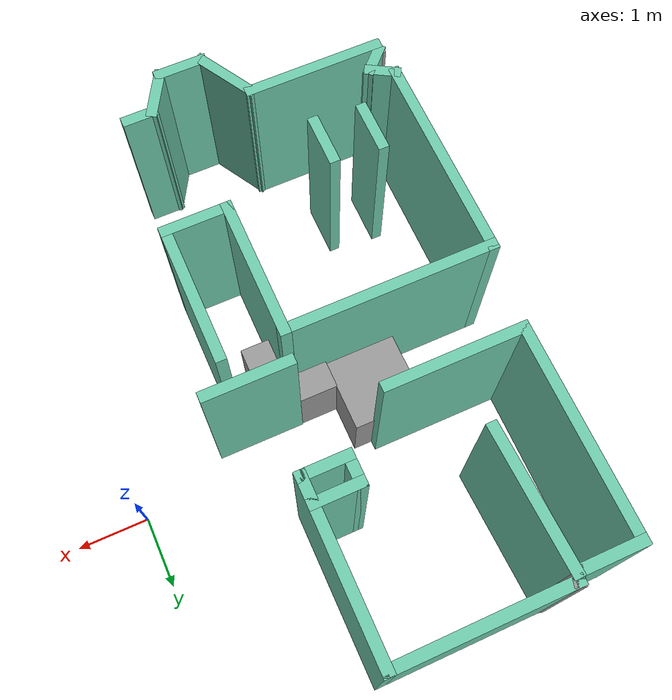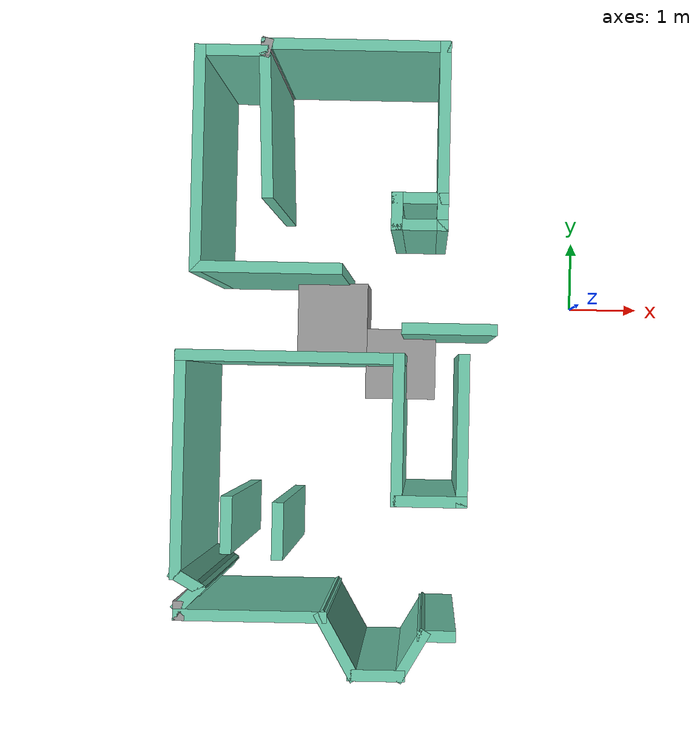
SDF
<sdf version="1.6">
 <model name="map_28">
  <link name="Wall_10">
   <pose>-3.17521 3.23882 0 0 -0 3.14159</pose>
   <visual name="Wall_10_Visual">
    <pose>0 0 1.25 0 -0 0</pose>
    <geometry><box><size>2.5 0.15 2.5</size></box></geometry>
    <material>
     <script><uri>file://media/materials/scripts/gazebo.material</uri><name>Gazebo/Grey</name></script>
     <ambient>0.435294 0.796078 0.67451 1</ambient>
     <shader type="pixel"/>
    </material>
    <meta><layer>0</layer></meta>
   </visual>
   <collision name="Wall_10_Collision">
    <pose>0 0 1.25 0 -0 0</pose>
    <geometry><box><size>2.5 0.15 2.5</size></box></geometry>
    <surface>
     <friction>
      <ode><mu>1</mu><mu2>1</mu2><fdir1>0 0 0</fdir1><slip1>0</slip1><slip2>0</slip2></ode>
      <torsional>
       <coefficient>1</coefficient>
       <patch_radius>0</patch_radius>
       <surface_radius>0</surface_radius>
       <use_patch_radius>1</use_patch_radius>
       <ode><slip>0</slip></ode>
      </torsional>
     </friction>
     <bounce><restitution_coefficient>0</restitution_coefficient><threshold>1e+06</threshold></bounce>
     <contact>
      <collide_without_contact>0</collide_without_contact>
      <collide_without_contact_bitmask>1</collide_without_contact_bitmask>
      <collide_bitmask>1</collide_bitmask>
      <ode>
       <soft_cfm>0</soft_cfm>
       <soft_erp>0.2</soft_erp>
       <kp>1e+13</kp>
       <kd>1</kd>
       <max_vel>0.01</max_vel>
       <min_depth>0</min_depth>
      </ode>
      <bullet>
       <split_impulse>1</split_impulse>
       <split_impulse_penetration_threshold>-0.01</split_impulse_penetration_threshold>
       <soft_cfm>0</soft_cfm>
       <soft_erp>0.2</soft_erp>
       <kp>1e+13</kp>
       <kd>1</kd>
      </bullet>
     </contact>
    </surface>
   </collision>
  </link>
  <link name="Wall_11">
   <pose>-4.3502 3.23882 0 0 -0 0</pose>
   <visual name="Wall_11_Visual">
    <pose>0 0 1.25 0 -0 0</pose>
    <geometry><box><size>0.15 0.15 2.5</size></box></geometry>
    <material>
     <script><uri>file://media/materials/scripts/gazebo.material</uri><name>Gazebo/Grey</name></script>
     <ambient>0.435294 0.796078 0.67451 1</ambient>
     <shader type="pixel"/>
    </material>
    <meta><layer>0</layer></meta>
   </visual>
   <collision name="Wall_11_Collision">
    <pose>0 0 1.25 0 -0 0</pose>
    <geometry><box><size>0.15 0.15 2.5</size></box></geometry>
    <surface>
     <friction>
      <ode><mu>1</mu><mu2>1</mu2><fdir1>0 0 0</fdir1><slip1>0</slip1><slip2>0</slip2></ode>
      <torsional>
       <coefficient>1</coefficient>
       <patch_radius>0</patch_radius>
       <surface_radius>0</surface_radius>
       <use_patch_radius>1</use_patch_radius>
       <ode><slip>0</slip></ode>
      </torsional>
     </friction>
     <bounce><restitution_coefficient>0</restitution_coefficient><threshold>1e+06</threshold></bounce>
     <contact>
      <collide_without_contact>0</collide_without_contact>
      <collide_without_contact_bitmask>1</collide_without_contact_bitmask>
      <collide_bitmask>1</collide_bitmask>
      <ode>
       <soft_cfm>0</soft_cfm>
       <soft_erp>0.2</soft_erp>
       <kp>1e+13</kp>
       <kd>1</kd>
       <max_vel>0.01</max_vel>
       <min_depth>0</min_depth>
      </ode>
      <bullet>
       <split_impulse>1</split_impulse>
       <split_impulse_penetration_threshold>-0.01</split_impulse_penetration_threshold>
       <soft_cfm>0</soft_cfm>
       <soft_erp>0.2</soft_erp>
       <kp>1e+13</kp>
       <kd>1</kd>
      </bullet>
     </contact>
    </surface>
   </collision>
  </link>
  <link name="Wall_114">
   <pose>-4.33787 2.20912 0 0 -0 1.61173</pose>
   <visual name="Wall_114_Visual">
    <pose>0 0 1.25 0 -0 0</pose>
    <geometry><box><size>2.01778 0.15 2.5</size></box></geometry>
    <material>
     <script><uri>file://media/materials/scripts/gazebo.material</uri><name>Gazebo/Grey</name></script>
     <ambient>0.435294 0.796078 0.67451 1</ambient>
     <shader type="pixel"/>
    </material>
    <meta><layer>0</layer></meta>
   </visual>
   <collision name="Wall_114_Collision">
    <pose>0 0 1.25 0 -0 0</pose>
    <geometry><box><size>2.01778 0.15 2.5</size></box></geometry>
    <surface>
     <friction>
      <ode><mu>1</mu><mu2>1</mu2><fdir1>0 0 0</fdir1><slip1>0</slip1><slip2>0</slip2></ode>
      <torsional>
       <coefficient>1</coefficient>
       <patch_radius>0</patch_radius>
       <surface_radius>0</surface_radius>
       <use_patch_radius>1</use_patch_radius>
       <ode><slip>0</slip></ode>
      </torsional>
     </friction>
     <bounce><restitution_coefficient>0</restitution_coefficient><threshold>1e+06</threshold></bounce>
     <contact>
      <collide_without_contact>0</collide_without_contact>
      <collide_without_contact_bitmask>1</collide_without_contact_bitmask>
      <collide_bitmask>1</collide_bitmask>
      <ode>
       <soft_cfm>0</soft_cfm>
       <soft_erp>0.2</soft_erp>
       <kp>1e+13</kp>
       <kd>1</kd>
       <max_vel>0.01</max_vel>
       <min_depth>0</min_depth>
      </ode>
      <bullet>
       <split_impulse>1</split_impulse>
       <split_impulse_penetration_threshold>-0.01</split_impulse_penetration_threshold>
       <soft_cfm>0</soft_cfm>
       <soft_erp>0.2</soft_erp>
       <kp>1e+13</kp>
       <kd>1</kd>
      </bullet>
     </contact>
    </surface>
   </collision>
  </link>
  <link name="Wall_118">
   <pose>-2.30021 0.888824 0 0 -0 3.14159</pose>
   <visual name="Wall_118_Visual">
    <pose>0 0 1.25 0 -0 0</pose>
    <geometry><box><size>0.75 0.15 2.5</size></box></geometry>
    <material>
     <script><uri>file://media/materials/scripts/gazebo.material</uri><name>Gazebo/Grey</name></script>
     <ambient>0.435294 0.796078 0.67451 1</ambient>
     <shader type="pixel"/>
    </material>
    <meta><layer>0</layer></meta>
   </visual>
   <collision name="Wall_118_Collision">
    <pose>0 0 1.25 0 -0 0</pose>
    <geometry><box><size>0.75 0.15 2.5</size></box></geometry>
    <surface>
     <friction>
      <ode><mu>1</mu><mu2>1</mu2><fdir1>0 0 0</fdir1><slip1>0</slip1><slip2>0</slip2></ode>
      <torsional>
       <coefficient>1</coefficient>
       <patch_radius>0</patch_radius>
       <surface_radius>0</surface_radius>
       <use_patch_radius>1</use_patch_radius>
       <ode><slip>0</slip></ode>
      </torsional>
     </friction>
     <bounce><restitution_coefficient>0</restitution_coefficient><threshold>1e+06</threshold></bounce>
     <contact>
      <collide_without_contact>0</collide_without_contact>
      <collide_without_contact_bitmask>1</collide_without_contact_bitmask>
      <collide_bitmask>1</collide_bitmask>
      <ode>
       <soft_cfm>0</soft_cfm>
       <soft_erp>0.2</soft_erp>
       <kp>1e+13</kp>
       <kd>1</kd>
       <max_vel>0.01</max_vel>
       <min_depth>0</min_depth>
      </ode>
      <bullet>
       <split_impulse>1</split_impulse>
       <split_impulse_penetration_threshold>-0.01</split_impulse_penetration_threshold>
       <soft_cfm>0</soft_cfm>
       <soft_erp>0.2</soft_erp>
       <kp>1e+13</kp>
       <kd>1</kd>
      </bullet>
     </contact>
    </surface>
   </collision>
  </link>
  <link name="Wall_119">
   <pose>-2.6002 1.06382 0 0 -0 1.5708</pose>
   <visual name="Wall_119_Visual">
    <pose>0 0 1.25 0 -0 0</pose>
    <geometry><box><size>0.5 0.15 2.5</size></box></geometry>
    <material>
     <script><uri>file://media/materials/scripts/gazebo.material</uri><name>Gazebo/Grey</name></script>
     <ambient>0.435294 0.796078 0.67451 1</ambient>
     <shader type="pixel"/>
    </material>
    <meta><layer>0</layer></meta>
   </visual>
   <collision name="Wall_119_Collision">
    <pose>0 0 1.25 0 -0 0</pose>
    <geometry><box><size>0.5 0.15 2.5</size></box></geometry>
    <surface>
     <friction>
      <ode><mu>1</mu><mu2>1</mu2><fdir1>0 0 0</fdir1><slip1>0</slip1><slip2>0</slip2></ode>
      <torsional>
       <coefficient>1</coefficient>
       <patch_radius>0</patch_radius>
       <surface_radius>0</surface_radius>
       <use_patch_radius>1</use_patch_radius>
       <ode><slip>0</slip></ode>
      </torsional>
     </friction>
     <bounce><restitution_coefficient>0</restitution_coefficient><threshold>1e+06</threshold></bounce>
     <contact>
      <collide_without_contact>0</collide_without_contact>
      <collide_without_contact_bitmask>1</collide_without_contact_bitmask>
      <collide_bitmask>1</collide_bitmask>
      <ode>
       <soft_cfm>0</soft_cfm>
       <soft_erp>0.2</soft_erp>
       <kp>1e+13</kp>
       <kd>1</kd>
       <max_vel>0.01</max_vel>
       <min_depth>0</min_depth>
      </ode>
      <bullet>
       <split_impulse>1</split_impulse>
       <split_impulse_penetration_threshold>-0.01</split_impulse_penetration_threshold>
       <soft_cfm>0</soft_cfm>
       <soft_erp>0.2</soft_erp>
       <kp>1e+13</kp>
       <kd>1</kd>
      </bullet>
     </contact>
    </surface>
   </collision>
  </link>
  <link name="Wall_120">
   <pose>-2.30021 1.23882 0 0 -0 0</pose>
   <visual name="Wall_120_Visual">
    <pose>0 0 1.25 0 -0 0</pose>
    <geometry><box><size>0.75 0.15 2.5</size></box></geometry>
    <material>
     <script><uri>file://media/materials/scripts/gazebo.material</uri><name>Gazebo/Grey</name></script>
     <ambient>0.435294 0.796078 0.67451 1</ambient>
     <shader type="pixel"/>
    </material>
    <meta><layer>0</layer></meta>
   </visual>
   <collision name="Wall_120_Collision">
    <pose>0 0 1.25 0 -0 0</pose>
    <geometry><box><size>0.75 0.15 2.5</size></box></geometry>
    <surface>
     <friction>
      <ode><mu>1</mu><mu2>1</mu2><fdir1>0 0 0</fdir1><slip1>0</slip1><slip2>0</slip2></ode>
      <torsional>
       <coefficient>1</coefficient>
       <patch_radius>0</patch_radius>
       <surface_radius>0</surface_radius>
       <use_patch_radius>1</use_patch_radius>
       <ode><slip>0</slip></ode>
      </torsional>
     </friction>
     <bounce><restitution_coefficient>0</restitution_coefficient><threshold>1e+06</threshold></bounce>
     <contact>
      <collide_without_contact>0</collide_without_contact>
      <collide_without_contact_bitmask>1</collide_without_contact_bitmask>
      <collide_bitmask>1</collide_bitmask>
      <ode>
       <soft_cfm>0</soft_cfm>
       <soft_erp>0.2</soft_erp>
       <kp>1e+13</kp>
       <kd>1</kd>
       <max_vel>0.01</max_vel>
       <min_depth>0</min_depth>
      </ode>
      <bullet>
       <split_impulse>1</split_impulse>
       <split_impulse_penetration_threshold>-0.01</split_impulse_penetration_threshold>
       <soft_cfm>0</soft_cfm>
       <soft_erp>0.2</soft_erp>
       <kp>1e+13</kp>
       <kd>1</kd>
      </bullet>
     </contact>
    </surface>
   </collision>
  </link>
  <link name="Wall_130">
   <pose>-4.73914 -3.07184 0 0 0 -1.5708</pose>
   <visual name="Wall_130_Visual">
    <pose>0 0 1.25 0 -0 0</pose>
    <geometry><box><size>0.75 0.15 2.5</size></box></geometry>
    <material>
     <script><uri>file://media/materials/scripts/gazebo.material</uri><name>Gazebo/Grey</name></script>
     <ambient>0.435294 0.796078 0.67451 1</ambient>
     <shader type="pixel"/>
    </material>
    <meta><layer>0</layer></meta>
   </visual>
   <collision name="Wall_130_Collision">
    <pose>0 0 1.25 0 -0 0</pose>
    <geometry><box><size>0.75 0.15 2.5</size></box></geometry>
    <surface>
     <friction>
      <ode><mu>1</mu><mu2>1</mu2><fdir1>0 0 0</fdir1><slip1>0</slip1><slip2>0</slip2></ode>
      <torsional>
       <coefficient>1</coefficient>
       <patch_radius>0</patch_radius>
       <surface_radius>0</surface_radius>
       <use_patch_radius>1</use_patch_radius>
       <ode><slip>0</slip></ode>
      </torsional>
     </friction>
     <bounce><restitution_coefficient>0</restitution_coefficient><threshold>1e+06</threshold></bounce>
     <contact>
      <collide_without_contact>0</collide_without_contact>
      <collide_without_contact_bitmask>1</collide_without_contact_bitmask>
      <collide_bitmask>1</collide_bitmask>
      <ode>
       <soft_cfm>0</soft_cfm>
       <soft_erp>0.2</soft_erp>
       <kp>1e+13</kp>
       <kd>1</kd>
       <max_vel>0.01</max_vel>
       <min_depth>0</min_depth>
      </ode>
      <bullet>
       <split_impulse>1</split_impulse>
       <split_impulse_penetration_threshold>-0.01</split_impulse_penetration_threshold>
       <soft_cfm>0</soft_cfm>
       <soft_erp>0.2</soft_erp>
       <kp>1e+13</kp>
       <kd>1</kd>
      </bullet>
     </contact>
    </surface>
   </collision>
  </link>
  <link name="Wall_132">
   <pose>-4.06835 -3.14124 0 0 0 -1.5708</pose>
   <visual name="Wall_132_Visual">
    <pose>0 0 1.25 0 -0 0</pose>
    <geometry><box><size>0.75 0.15 2.5</size></box></geometry>
    <material>
     <script><uri>file://media/materials/scripts/gazebo.material</uri><name>Gazebo/Grey</name></script>
     <ambient>0.435294 0.796078 0.67451 1</ambient>
     <shader type="pixel"/>
    </material>
    <meta><layer>0</layer></meta>
   </visual>
   <collision name="Wall_132_Collision">
    <pose>0 0 1.25 0 -0 0</pose>
    <geometry><box><size>0.75 0.15 2.5</size></box></geometry>
    <surface>
     <friction>
      <ode><mu>1</mu><mu2>1</mu2><fdir1>0 0 0</fdir1><slip1>0</slip1><slip2>0</slip2></ode>
      <torsional>
       <coefficient>1</coefficient>
       <patch_radius>0</patch_radius>
       <surface_radius>0</surface_radius>
       <use_patch_radius>1</use_patch_radius>
       <ode><slip>0</slip></ode>
      </torsional>
     </friction>
     <bounce><restitution_coefficient>0</restitution_coefficient><threshold>1e+06</threshold></bounce>
     <contact>
      <collide_without_contact>0</collide_without_contact>
      <collide_without_contact_bitmask>1</collide_without_contact_bitmask>
      <collide_bitmask>1</collide_bitmask>
      <ode>
       <soft_cfm>0</soft_cfm>
       <soft_erp>0.2</soft_erp>
       <kp>1e+13</kp>
       <kd>1</kd>
       <max_vel>0.01</max_vel>
       <min_depth>0</min_depth>
      </ode>
      <bullet>
       <split_impulse>1</split_impulse>
       <split_impulse_penetration_threshold>-0.01</split_impulse_penetration_threshold>
       <soft_cfm>0</soft_cfm>
       <soft_erp>0.2</soft_erp>
       <kp>1e+13</kp>
       <kd>1</kd>
      </bullet>
     </contact>
    </surface>
   </collision>
  </link>
  <link name="Wall_14">
   <pose>-4.36315 3.19053 0 0 0 -1.8326</pose>
   <visual name="Wall_14_Visual">
    <pose>0 0 1.25 0 -0 0</pose>
    <geometry><box><size>0.25 0.15 2.5</size></box></geometry>
    <material>
     <script><uri>file://media/materials/scripts/gazebo.material</uri><name>Gazebo/Grey</name></script>
     <ambient>1 1 1 1</ambient>
     <shader type="pixel"/>
    </material>
    <meta><layer>0</layer></meta>
   </visual>
   <collision name="Wall_14_Collision">
    <pose>0 0 1.25 0 -0 0</pose>
    <geometry><box><size>0.25 0.15 2.5</size></box></geometry>
    <surface>
     <friction>
      <ode><mu>1</mu><mu2>1</mu2><fdir1>0 0 0</fdir1><slip1>0</slip1><slip2>0</slip2></ode>
      <torsional>
       <coefficient>1</coefficient>
       <patch_radius>0</patch_radius>
       <surface_radius>0</surface_radius>
       <use_patch_radius>1</use_patch_radius>
       <ode><slip>0</slip></ode>
      </torsional>
     </friction>
     <bounce><restitution_coefficient>0</restitution_coefficient><threshold>1e+06</threshold></bounce>
     <contact>
      <collide_without_contact>0</collide_without_contact>
      <collide_without_contact_bitmask>1</collide_without_contact_bitmask>
      <collide_bitmask>1</collide_bitmask>
      <ode>
       <soft_cfm>0</soft_cfm>
       <soft_erp>0.2</soft_erp>
       <kp>1e+13</kp>
       <kd>1</kd>
       <max_vel>0.01</max_vel>
       <min_depth>0</min_depth>
      </ode>
      <bullet>
       <split_impulse>1</split_impulse>
       <split_impulse_penetration_threshold>-0.01</split_impulse_penetration_threshold>
       <soft_cfm>0</soft_cfm>
       <soft_erp>0.2</soft_erp>
       <kp>1e+13</kp>
       <kd>1</kd>
      </bullet>
     </contact>
    </surface>
   </collision>
  </link>
  <link name="Wall_15">
   <pose>-4.80109 3.14223 0 0 -0 3.14159</pose>
   <visual name="Wall_15_Visual">
    <pose>0 0 1.25 0 -0 0</pose>
    <geometry><box><size>1 0.15 2.5</size></box></geometry>
    <material>
     <script><uri>file://media/materials/scripts/gazebo.material</uri><name>Gazebo/Grey</name></script>
     <ambient>0.435294 0.796078 0.67451 1</ambient>
     <shader type="pixel"/>
    </material>
    <meta><layer>0</layer></meta>
   </visual>
   <collision name="Wall_15_Collision">
    <pose>0 0 1.25 0 -0 0</pose>
    <geometry><box><size>1 0.15 2.5</size></box></geometry>
    <surface>
     <friction>
      <ode><mu>1</mu><mu2>1</mu2><fdir1>0 0 0</fdir1><slip1>0</slip1><slip2>0</slip2></ode>
      <torsional>
       <coefficient>1</coefficient>
       <patch_radius>0</patch_radius>
       <surface_radius>0</surface_radius>
       <use_patch_radius>1</use_patch_radius>
       <ode><slip>0</slip></ode>
      </torsional>
     </friction>
     <bounce><restitution_coefficient>0</restitution_coefficient><threshold>1e+06</threshold></bounce>
     <contact>
      <collide_without_contact>0</collide_without_contact>
      <collide_without_contact_bitmask>1</collide_without_contact_bitmask>
      <collide_bitmask>1</collide_bitmask>
      <ode>
       <soft_cfm>0</soft_cfm>
       <soft_erp>0.2</soft_erp>
       <kp>1e+13</kp>
       <kd>1</kd>
       <max_vel>0.01</max_vel>
       <min_depth>0</min_depth>
      </ode>
      <bullet>
       <split_impulse>1</split_impulse>
       <split_impulse_penetration_threshold>-0.01</split_impulse_penetration_threshold>
       <soft_cfm>0</soft_cfm>
       <soft_erp>0.2</soft_erp>
       <kp>1e+13</kp>
       <kd>1</kd>
      </bullet>
     </contact>
    </surface>
   </collision>
  </link>
  <link name="Wall_16">
   <pose>-5.22609 1.71723 0 0 0 -1.5708</pose>
   <visual name="Wall_16_Visual">
    <pose>0 0 1.25 0 -0 0</pose>
    <geometry><box><size>3 0.15 2.5</size></box></geometry>
    <material>
     <script><uri>file://media/materials/scripts/gazebo.material</uri><name>Gazebo/Grey</name></script>
     <ambient>0.435294 0.796078 0.67451 1</ambient>
     <shader type="pixel"/>
    </material>
    <meta><layer>0</layer></meta>
   </visual>
   <collision name="Wall_16_Collision">
    <pose>0 0 1.25 0 -0 0</pose>
    <geometry><box><size>3 0.15 2.5</size></box></geometry>
    <surface>
     <friction>
      <ode><mu>1</mu><mu2>1</mu2><fdir1>0 0 0</fdir1><slip1>0</slip1><slip2>0</slip2></ode>
      <torsional>
       <coefficient>1</coefficient>
       <patch_radius>0</patch_radius>
       <surface_radius>0</surface_radius>
       <use_patch_radius>1</use_patch_radius>
       <ode><slip>0</slip></ode>
      </torsional>
     </friction>
     <bounce><restitution_coefficient>0</restitution_coefficient><threshold>1e+06</threshold></bounce>
     <contact>
      <collide_without_contact>0</collide_without_contact>
      <collide_without_contact_bitmask>1</collide_without_contact_bitmask>
      <collide_bitmask>1</collide_bitmask>
      <ode>
       <soft_cfm>0</soft_cfm>
       <soft_erp>0.2</soft_erp>
       <kp>1e+13</kp>
       <kd>1</kd>
       <max_vel>0.01</max_vel>
       <min_depth>0</min_depth>
      </ode>
      <bullet>
       <split_impulse>1</split_impulse>
       <split_impulse_penetration_threshold>-0.01</split_impulse_penetration_threshold>
       <soft_cfm>0</soft_cfm>
       <soft_erp>0.2</soft_erp>
       <kp>1e+13</kp>
       <kd>1</kd>
      </bullet>
     </contact>
    </surface>
   </collision>
  </link>
  <link name="Wall_17">
   <pose>-4.30109 0.292231 0 0 -0 0</pose>
   <visual name="Wall_17_Visual">
    <pose>0 0 1.25 0 -0 0</pose>
    <geometry><box><size>2 0.15 2.5</size></box></geometry>
    <material>
     <script><uri>file://media/materials/scripts/gazebo.material</uri><name>Gazebo/Grey</name></script>
     <ambient>0.435294 0.796078 0.67451 1</ambient>
     <shader type="pixel"/>
    </material>
    <meta><layer>0</layer></meta>
   </visual>
   <collision name="Wall_17_Collision">
    <pose>0 0 1.25 0 -0 0</pose>
    <geometry><box><size>2 0.15 2.5</size></box></geometry>
    <surface>
     <friction>
      <ode><mu>1</mu><mu2>1</mu2><fdir1>0 0 0</fdir1><slip1>0</slip1><slip2>0</slip2></ode>
      <torsional>
       <coefficient>1</coefficient>
       <patch_radius>0</patch_radius>
       <surface_radius>0</surface_radius>
       <use_patch_radius>1</use_patch_radius>
       <ode><slip>0</slip></ode>
      </torsional>
     </friction>
     <bounce><restitution_coefficient>0</restitution_coefficient><threshold>1e+06</threshold></bounce>
     <contact>
      <collide_without_contact>0</collide_without_contact>
      <collide_without_contact_bitmask>1</collide_without_contact_bitmask>
      <collide_bitmask>1</collide_bitmask>
      <ode>
       <soft_cfm>0</soft_cfm>
       <soft_erp>0.2</soft_erp>
       <kp>1e+13</kp>
       <kd>1</kd>
       <max_vel>0.01</max_vel>
       <min_depth>0</min_depth>
      </ode>
      <bullet>
       <split_impulse>1</split_impulse>
       <split_impulse_penetration_threshold>-0.01</split_impulse_penetration_threshold>
       <soft_cfm>0</soft_cfm>
       <soft_erp>0.2</soft_erp>
       <kp>1e+13</kp>
       <kd>1</kd>
      </bullet>
     </contact>
    </surface>
   </collision>
  </link>
  <link name="Wall_23">
   <pose>-1.8855 -0.469695 0 0 -0 0</pose>
   <visual name="Wall_23_Visual">
    <pose>0 0 1.25 0 -0 0</pose>
    <geometry><box><size>1.25 0.15 2.5</size></box></geometry>
    <material>
     <script><uri>file://media/materials/scripts/gazebo.material</uri><name>Gazebo/Grey</name></script>
     <ambient>0.435294 0.796078 0.67451 1</ambient>
     <shader type="pixel"/>
    </material>
    <meta><layer>0</layer></meta>
   </visual>
   <collision name="Wall_23_Collision">
    <pose>0 0 1.25 0 -0 0</pose>
    <geometry><box><size>1.25 0.15 2.5</size></box></geometry>
    <surface>
     <friction>
      <ode><mu>1</mu><mu2>1</mu2><fdir1>0 0 0</fdir1><slip1>0</slip1><slip2>0</slip2></ode>
      <torsional>
       <coefficient>1</coefficient>
       <patch_radius>0</patch_radius>
       <surface_radius>0</surface_radius>
       <use_patch_radius>1</use_patch_radius>
       <ode><slip>0</slip></ode>
      </torsional>
     </friction>
     <bounce><restitution_coefficient>0</restitution_coefficient><threshold>1e+06</threshold></bounce>
     <contact>
      <collide_without_contact>0</collide_without_contact>
      <collide_without_contact_bitmask>1</collide_without_contact_bitmask>
      <collide_bitmask>1</collide_bitmask>
      <ode>
       <soft_cfm>0</soft_cfm>
       <soft_erp>0.2</soft_erp>
       <kp>1e+13</kp>
       <kd>1</kd>
       <max_vel>0.01</max_vel>
       <min_depth>0</min_depth>
      </ode>
      <bullet>
       <split_impulse>1</split_impulse>
       <split_impulse_penetration_threshold>-0.01</split_impulse_penetration_threshold>
       <soft_cfm>0</soft_cfm>
       <soft_erp>0.2</soft_erp>
       <kp>1e+13</kp>
       <kd>1</kd>
      </bullet>
     </contact>
    </surface>
   </collision>
  </link>
  <link name="Wall_38">
   <pose>-1.6855 -1.79469 0 0 0 -1.5708</pose>
   <visual name="Wall_38_Visual">
    <pose>0 0 1.25 0 -0 0</pose>
    <geometry><box><size>2 0.15 2.5</size></box></geometry>
    <material>
     <script><uri>file://media/materials/scripts/gazebo.material</uri><name>Gazebo/Grey</name></script>
     <ambient>0.435294 0.796078 0.67451 1</ambient>
     <shader type="pixel"/>
    </material>
    <meta><layer>0</layer></meta>
   </visual>
   <collision name="Wall_38_Collision">
    <pose>0 0 1.25 0 -0 0</pose>
    <geometry><box><size>2 0.15 2.5</size></box></geometry>
    <surface>
     <friction>
      <ode><mu>1</mu><mu2>1</mu2><fdir1>0 0 0</fdir1><slip1>0</slip1><slip2>0</slip2></ode>
      <torsional>
       <coefficient>1</coefficient>
       <patch_radius>0</patch_radius>
       <surface_radius>0</surface_radius>
       <use_patch_radius>1</use_patch_radius>
       <ode><slip>0</slip></ode>
      </torsional>
     </friction>
     <bounce><restitution_coefficient>0</restitution_coefficient><threshold>1e+06</threshold></bounce>
     <contact>
      <collide_without_contact>0</collide_without_contact>
      <collide_without_contact_bitmask>1</collide_without_contact_bitmask>
      <collide_bitmask>1</collide_bitmask>
      <ode>
       <soft_cfm>0</soft_cfm>
       <soft_erp>0.2</soft_erp>
       <kp>1e+13</kp>
       <kd>1</kd>
       <max_vel>0.01</max_vel>
       <min_depth>0</min_depth>
      </ode>
      <bullet>
       <split_impulse>1</split_impulse>
       <split_impulse_penetration_threshold>-0.01</split_impulse_penetration_threshold>
       <soft_cfm>0</soft_cfm>
       <soft_erp>0.2</soft_erp>
       <kp>1e+13</kp>
       <kd>1</kd>
      </bullet>
     </contact>
    </surface>
   </collision>
  </link>
  <link name="Wall_39">
   <pose>-2.1105 -2.7197 0 0 -0 3.14159</pose>
   <visual name="Wall_39_Visual">
    <pose>0 0 1.25 0 -0 0</pose>
    <geometry><box><size>1 0.15 2.5</size></box></geometry>
    <material>
     <script><uri>file://media/materials/scripts/gazebo.material</uri><name>Gazebo/Grey</name></script>
     <ambient>0.435294 0.796078 0.67451 1</ambient>
     <shader type="pixel"/>
    </material>
    <meta><layer>0</layer></meta>
   </visual>
   <collision name="Wall_39_Collision">
    <pose>0 0 1.25 0 -0 0</pose>
    <geometry><box><size>1 0.15 2.5</size></box></geometry>
    <surface>
     <friction>
      <ode><mu>1</mu><mu2>1</mu2><fdir1>0 0 0</fdir1><slip1>0</slip1><slip2>0</slip2></ode>
      <torsional>
       <coefficient>1</coefficient>
       <patch_radius>0</patch_radius>
       <surface_radius>0</surface_radius>
       <use_patch_radius>1</use_patch_radius>
       <ode><slip>0</slip></ode>
      </torsional>
     </friction>
     <bounce><restitution_coefficient>0</restitution_coefficient><threshold>1e+06</threshold></bounce>
     <contact>
      <collide_without_contact>0</collide_without_contact>
      <collide_without_contact_bitmask>1</collide_without_contact_bitmask>
      <collide_bitmask>1</collide_bitmask>
      <ode>
       <soft_cfm>0</soft_cfm>
       <soft_erp>0.2</soft_erp>
       <kp>1e+13</kp>
       <kd>1</kd>
       <max_vel>0.01</max_vel>
       <min_depth>0</min_depth>
      </ode>
      <bullet>
       <split_impulse>1</split_impulse>
       <split_impulse_penetration_threshold>-0.01</split_impulse_penetration_threshold>
       <soft_cfm>0</soft_cfm>
       <soft_erp>0.2</soft_erp>
       <kp>1e+13</kp>
       <kd>1</kd>
      </bullet>
     </contact>
    </surface>
   </collision>
  </link>
  <link name="Wall_42">
   <pose>-2.5355 -1.79469 0 0 -0 1.5708</pose>
   <visual name="Wall_42_Visual">
    <pose>0 0 1.25 0 -0 0</pose>
    <geometry><box><size>2 0.15 2.5</size></box></geometry>
    <material>
     <script><uri>file://media/materials/scripts/gazebo.material</uri><name>Gazebo/Grey</name></script>
     <ambient>0.435294 0.796078 0.67451 1</ambient>
     <shader type="pixel"/>
    </material>
    <meta><layer>0</layer></meta>
   </visual>
   <collision name="Wall_42_Collision">
    <pose>0 0 1.25 0 -0 0</pose>
    <geometry><box><size>2 0.15 2.5</size></box></geometry>
    <surface>
     <friction>
      <ode><mu>1</mu><mu2>1</mu2><fdir1>0 0 0</fdir1><slip1>0</slip1><slip2>0</slip2></ode>
      <torsional>
       <coefficient>1</coefficient>
       <patch_radius>0</patch_radius>
       <surface_radius>0</surface_radius>
       <use_patch_radius>1</use_patch_radius>
       <ode><slip>0</slip></ode>
      </torsional>
     </friction>
     <bounce><restitution_coefficient>0</restitution_coefficient><threshold>1e+06</threshold></bounce>
     <contact>
      <collide_without_contact>0</collide_without_contact>
      <collide_without_contact_bitmask>1</collide_without_contact_bitmask>
      <collide_bitmask>1</collide_bitmask>
      <ode>
       <soft_cfm>0</soft_cfm>
       <soft_erp>0.2</soft_erp>
       <kp>1e+13</kp>
       <kd>1</kd>
       <max_vel>0.01</max_vel>
       <min_depth>0</min_depth>
      </ode>
      <bullet>
       <split_impulse>1</split_impulse>
       <split_impulse_penetration_threshold>-0.01</split_impulse_penetration_threshold>
       <soft_cfm>0</soft_cfm>
       <soft_erp>0.2</soft_erp>
       <kp>1e+13</kp>
       <kd>1</kd>
      </bullet>
     </contact>
    </surface>
   </collision>
  </link>
  <link name="Wall_43">
   <pose>-3.9605 -0.869695 0 0 -0 3.14159</pose>
   <visual name="Wall_43_Visual">
    <pose>0 0 1.25 0 -0 0</pose>
    <geometry><box><size>3 0.15 2.5</size></box></geometry>
    <material>
     <script><uri>file://media/materials/scripts/gazebo.material</uri><name>Gazebo/Grey</name></script>
     <ambient>0.435294 0.796078 0.67451 1</ambient>
     <shader type="pixel"/>
    </material>
    <meta><layer>0</layer></meta>
   </visual>
   <collision name="Wall_43_Collision">
    <pose>0 0 1.25 0 -0 0</pose>
    <geometry><box><size>3 0.15 2.5</size></box></geometry>
    <surface>
     <friction>
      <ode><mu>1</mu><mu2>1</mu2><fdir1>0 0 0</fdir1><slip1>0</slip1><slip2>0</slip2></ode>
      <torsional>
       <coefficient>1</coefficient>
       <patch_radius>0</patch_radius>
       <surface_radius>0</surface_radius>
       <use_patch_radius>1</use_patch_radius>
       <ode><slip>0</slip></ode>
      </torsional>
     </friction>
     <bounce><restitution_coefficient>0</restitution_coefficient><threshold>1e+06</threshold></bounce>
     <contact>
      <collide_without_contact>0</collide_without_contact>
      <collide_without_contact_bitmask>1</collide_without_contact_bitmask>
      <collide_bitmask>1</collide_bitmask>
      <ode>
       <soft_cfm>0</soft_cfm>
       <soft_erp>0.2</soft_erp>
       <kp>1e+13</kp>
       <kd>1</kd>
       <max_vel>0.01</max_vel>
       <min_depth>0</min_depth>
      </ode>
      <bullet>
       <split_impulse>1</split_impulse>
       <split_impulse_penetration_threshold>-0.01</split_impulse_penetration_threshold>
       <soft_cfm>0</soft_cfm>
       <soft_erp>0.2</soft_erp>
       <kp>1e+13</kp>
       <kd>1</kd>
      </bullet>
     </contact>
    </surface>
   </collision>
  </link>
  <link name="Wall_44">
   <pose>-5.3855 -2.29469 0 0 0 -1.5708</pose>
   <visual name="Wall_44_Visual">
    <pose>0 0 1.25 0 -0 0</pose>
    <geometry><box><size>3 0.15 2.5</size></box></geometry>
    <material>
     <script><uri>file://media/materials/scripts/gazebo.material</uri><name>Gazebo/Grey</name></script>
     <ambient>0.435294 0.796078 0.67451 1</ambient>
     <shader type="pixel"/>
    </material>
    <meta><layer>0</layer></meta>
   </visual>
   <collision name="Wall_44_Collision">
    <pose>0 0 1.25 0 -0 0</pose>
    <geometry><box><size>3 0.15 2.5</size></box></geometry>
    <surface>
     <friction>
      <ode><mu>1</mu><mu2>1</mu2><fdir1>0 0 0</fdir1><slip1>0</slip1><slip2>0</slip2></ode>
      <torsional>
       <coefficient>1</coefficient>
       <patch_radius>0</patch_radius>
       <surface_radius>0</surface_radius>
       <use_patch_radius>1</use_patch_radius>
       <ode><slip>0</slip></ode>
      </torsional>
     </friction>
     <bounce><restitution_coefficient>0</restitution_coefficient><threshold>1e+06</threshold></bounce>
     <contact>
      <collide_without_contact>0</collide_without_contact>
      <collide_without_contact_bitmask>1</collide_without_contact_bitmask>
      <collide_bitmask>1</collide_bitmask>
      <ode>
       <soft_cfm>0</soft_cfm>
       <soft_erp>0.2</soft_erp>
       <kp>1e+13</kp>
       <kd>1</kd>
       <max_vel>0.01</max_vel>
       <min_depth>0</min_depth>
      </ode>
      <bullet>
       <split_impulse>1</split_impulse>
       <split_impulse_penetration_threshold>-0.01</split_impulse_penetration_threshold>
       <soft_cfm>0</soft_cfm>
       <soft_erp>0.2</soft_erp>
       <kp>1e+13</kp>
       <kd>1</kd>
      </bullet>
     </contact>
    </surface>
   </collision>
  </link>
  <link name="Wall_45">
   <pose>-5.23395 -3.80719 0 0 0 -0.523599</pose>
   <visual name="Wall_45_Visual">
    <pose>0 0 1.25 0 -0 0</pose>
    <geometry><box><size>0.5 0.15 2.5</size></box></geometry>
    <material>
     <script><uri>file://media/materials/scripts/gazebo.material</uri><name>Gazebo/Grey</name></script>
     <ambient>0.435294 0.796078 0.67451 1</ambient>
     <shader type="pixel"/>
    </material>
    <meta><layer>0</layer></meta>
   </visual>
   <collision name="Wall_45_Collision">
    <pose>0 0 1.25 0 -0 0</pose>
    <geometry><box><size>0.5 0.15 2.5</size></box></geometry>
    <surface>
     <friction>
      <ode><mu>1</mu><mu2>1</mu2><fdir1>0 0 0</fdir1><slip1>0</slip1><slip2>0</slip2></ode>
      <torsional>
       <coefficient>1</coefficient>
       <patch_radius>0</patch_radius>
       <surface_radius>0</surface_radius>
       <use_patch_radius>1</use_patch_radius>
       <ode><slip>0</slip></ode>
      </torsional>
     </friction>
     <bounce><restitution_coefficient>0</restitution_coefficient><threshold>1e+06</threshold></bounce>
     <contact>
      <collide_without_contact>0</collide_without_contact>
      <collide_without_contact_bitmask>1</collide_without_contact_bitmask>
      <collide_bitmask>1</collide_bitmask>
      <ode>
       <soft_cfm>0</soft_cfm>
       <soft_erp>0.2</soft_erp>
       <kp>1e+13</kp>
       <kd>1</kd>
       <max_vel>0.01</max_vel>
       <min_depth>0</min_depth>
      </ode>
      <bullet>
       <split_impulse>1</split_impulse>
       <split_impulse_penetration_threshold>-0.01</split_impulse_penetration_threshold>
       <soft_cfm>0</soft_cfm>
       <soft_erp>0.2</soft_erp>
       <kp>1e+13</kp>
       <kd>1</kd>
      </bullet>
     </contact>
    </surface>
   </collision>
  </link>
  <link name="Wall_46">
   <pose>-5.20614 -4.01844 0 0 0 -2.35619</pose>
   <visual name="Wall_46_Visual">
    <pose>0 0 1.25 0 -0 0</pose>
    <geometry><box><size>0.5 0.15 2.5</size></box></geometry>
    <material>
     <script><uri>file://media/materials/scripts/gazebo.material</uri><name>Gazebo/Grey</name></script>
     <ambient>0.435294 0.796078 0.67451 1</ambient>
     <shader type="pixel"/>
    </material>
    <meta><layer>0</layer></meta>
   </visual>
   <collision name="Wall_46_Collision">
    <pose>0 0 1.25 0 -0 0</pose>
    <geometry><box><size>0.5 0.15 2.5</size></box></geometry>
    <surface>
     <friction>
      <ode><mu>1</mu><mu2>1</mu2><fdir1>0 0 0</fdir1><slip1>0</slip1><slip2>0</slip2></ode>
      <torsional>
       <coefficient>1</coefficient>
       <patch_radius>0</patch_radius>
       <surface_radius>0</surface_radius>
       <use_patch_radius>1</use_patch_radius>
       <ode><slip>0</slip></ode>
      </torsional>
     </friction>
     <bounce><restitution_coefficient>0</restitution_coefficient><threshold>1e+06</threshold></bounce>
     <contact>
      <collide_without_contact>0</collide_without_contact>
      <collide_without_contact_bitmask>1</collide_without_contact_bitmask>
      <collide_bitmask>1</collide_bitmask>
      <ode>
       <soft_cfm>0</soft_cfm>
       <soft_erp>0.2</soft_erp>
       <kp>1e+13</kp>
       <kd>1</kd>
       <max_vel>0.01</max_vel>
       <min_depth>0</min_depth>
      </ode>
      <bullet>
       <split_impulse>1</split_impulse>
       <split_impulse_penetration_threshold>-0.01</split_impulse_penetration_threshold>
       <soft_cfm>0</soft_cfm>
       <soft_erp>0.2</soft_erp>
       <kp>1e+13</kp>
       <kd>1</kd>
      </bullet>
     </contact>
    </surface>
   </collision>
  </link>
  <link name="Wall_47">
   <pose>-5.32988 -4.19218 0 0 0 -1.5708</pose>
   <visual name="Wall_47_Visual">
    <pose>0 0 1.25 0 -0 0</pose>
    <geometry><box><size>0.25 0.15 2.5</size></box></geometry>
    <material>
     <script><uri>file://media/materials/scripts/gazebo.material</uri><name>Gazebo/Grey</name></script>
     <ambient>1 1 1 1</ambient>
     <shader type="pixel"/>
    </material>
    <meta><layer>0</layer></meta>
   </visual>
   <collision name="Wall_47_Collision">
    <pose>0 0 1.25 0 -0 0</pose>
    <geometry><box><size>0.25 0.15 2.5</size></box></geometry>
    <surface>
     <friction>
      <ode><mu>1</mu><mu2>1</mu2><fdir1>0 0 0</fdir1><slip1>0</slip1><slip2>0</slip2></ode>
      <torsional>
       <coefficient>1</coefficient>
       <patch_radius>0</patch_radius>
       <surface_radius>0</surface_radius>
       <use_patch_radius>1</use_patch_radius>
       <ode><slip>0</slip></ode>
      </torsional>
     </friction>
     <bounce><restitution_coefficient>0</restitution_coefficient><threshold>1e+06</threshold></bounce>
     <contact>
      <collide_without_contact>0</collide_without_contact>
      <collide_without_contact_bitmask>1</collide_without_contact_bitmask>
      <collide_bitmask>1</collide_bitmask>
      <ode>
       <soft_cfm>0</soft_cfm>
       <soft_erp>0.2</soft_erp>
       <kp>1e+13</kp>
       <kd>1</kd>
       <max_vel>0.01</max_vel>
       <min_depth>0</min_depth>
      </ode>
      <bullet>
       <split_impulse>1</split_impulse>
       <split_impulse_penetration_threshold>-0.01</split_impulse_penetration_threshold>
       <soft_cfm>0</soft_cfm>
       <soft_erp>0.2</soft_erp>
       <kp>1e+13</kp>
       <kd>1</kd>
      </bullet>
     </contact>
    </surface>
   </collision>
  </link>
  <link name="Wall_48">
   <pose>-4.40488 -4.24218 0 0 -0 0</pose>
   <visual name="Wall_48_Visual">
    <pose>0 0 1.25 0 -0 0</pose>
    <geometry><box><size>2 0.15 2.5</size></box></geometry>
    <material>
     <script><uri>file://media/materials/scripts/gazebo.material</uri><name>Gazebo/Grey</name></script>
     <ambient>0.435294 0.796078 0.67451 1</ambient>
     <shader type="pixel"/>
    </material>
    <meta><layer>0</layer></meta>
   </visual>
   <collision name="Wall_48_Collision">
    <pose>0 0 1.25 0 -0 0</pose>
    <geometry><box><size>2 0.15 2.5</size></box></geometry>
    <surface>
     <friction>
      <ode><mu>1</mu><mu2>1</mu2><fdir1>0 0 0</fdir1><slip1>0</slip1><slip2>0</slip2></ode>
      <torsional>
       <coefficient>1</coefficient>
       <patch_radius>0</patch_radius>
       <surface_radius>0</surface_radius>
       <use_patch_radius>1</use_patch_radius>
       <ode><slip>0</slip></ode>
      </torsional>
     </friction>
     <bounce><restitution_coefficient>0</restitution_coefficient><threshold>1e+06</threshold></bounce>
     <contact>
      <collide_without_contact>0</collide_without_contact>
      <collide_without_contact_bitmask>1</collide_without_contact_bitmask>
      <collide_bitmask>1</collide_bitmask>
      <ode>
       <soft_cfm>0</soft_cfm>
       <soft_erp>0.2</soft_erp>
       <kp>1e+13</kp>
       <kd>1</kd>
       <max_vel>0.01</max_vel>
       <min_depth>0</min_depth>
      </ode>
      <bullet>
       <split_impulse>1</split_impulse>
       <split_impulse_penetration_threshold>-0.01</split_impulse_penetration_threshold>
       <soft_cfm>0</soft_cfm>
       <soft_erp>0.2</soft_erp>
       <kp>1e+13</kp>
       <kd>1</kd>
      </bullet>
     </contact>
    </surface>
   </collision>
  </link>
  <link name="Wall_49">
   <pose>-3.26738 -4.61024 0 0 0 -1.0472</pose>
   <visual name="Wall_49_Visual">
    <pose>0 0 1.25 0 -0 0</pose>
    <geometry><box><size>1 0.15 2.5</size></box></geometry>
    <material>
     <script><uri>file://media/materials/scripts/gazebo.material</uri><name>Gazebo/Grey</name></script>
     <ambient>0.435294 0.796078 0.67451 1</ambient>
     <shader type="pixel"/>
    </material>
    <meta><layer>0</layer></meta>
   </visual>
   <collision name="Wall_49_Collision">
    <pose>0 0 1.25 0 -0 0</pose>
    <geometry><box><size>1 0.15 2.5</size></box></geometry>
    <surface>
     <friction>
      <ode><mu>1</mu><mu2>1</mu2><fdir1>0 0 0</fdir1><slip1>0</slip1><slip2>0</slip2></ode>
      <torsional>
       <coefficient>1</coefficient>
       <patch_radius>0</patch_radius>
       <surface_radius>0</surface_radius>
       <use_patch_radius>1</use_patch_radius>
       <ode><slip>0</slip></ode>
      </torsional>
     </friction>
     <bounce><restitution_coefficient>0</restitution_coefficient><threshold>1e+06</threshold></bounce>
     <contact>
      <collide_without_contact>0</collide_without_contact>
      <collide_without_contact_bitmask>1</collide_without_contact_bitmask>
      <collide_bitmask>1</collide_bitmask>
      <ode>
       <soft_cfm>0</soft_cfm>
       <soft_erp>0.2</soft_erp>
       <kp>1e+13</kp>
       <kd>1</kd>
       <max_vel>0.01</max_vel>
       <min_depth>0</min_depth>
      </ode>
      <bullet>
       <split_impulse>1</split_impulse>
       <split_impulse_penetration_threshold>-0.01</split_impulse_penetration_threshold>
       <soft_cfm>0</soft_cfm>
       <soft_erp>0.2</soft_erp>
       <kp>1e+13</kp>
       <kd>1</kd>
      </bullet>
     </contact>
    </surface>
   </collision>
  </link>
  <link name="Wall_50">
   <pose>-2.75488 -4.9783 0 0 -0 0</pose>
   <visual name="Wall_50_Visual">
    <pose>0 0 1.25 0 -0 0</pose>
    <geometry><box><size>0.75 0.15 2.5</size></box></geometry>
    <material>
     <script><uri>file://media/materials/scripts/gazebo.material</uri><name>Gazebo/Grey</name></script>
     <ambient>0.435294 0.796078 0.67451 1</ambient>
     <shader type="pixel"/>
    </material>
    <meta><layer>0</layer></meta>
   </visual>
   <collision name="Wall_50_Collision">
    <pose>0 0 1.25 0 -0 0</pose>
    <geometry><box><size>0.75 0.15 2.5</size></box></geometry>
    <surface>
     <friction>
      <ode><mu>1</mu><mu2>1</mu2><fdir1>0 0 0</fdir1><slip1>0</slip1><slip2>0</slip2></ode>
      <torsional>
       <coefficient>1</coefficient>
       <patch_radius>0</patch_radius>
       <surface_radius>0</surface_radius>
       <use_patch_radius>1</use_patch_radius>
       <ode><slip>0</slip></ode>
      </torsional>
     </friction>
     <bounce><restitution_coefficient>0</restitution_coefficient><threshold>1e+06</threshold></bounce>
     <contact>
      <collide_without_contact>0</collide_without_contact>
      <collide_without_contact_bitmask>1</collide_without_contact_bitmask>
      <collide_bitmask>1</collide_bitmask>
      <ode>
       <soft_cfm>0</soft_cfm>
       <soft_erp>0.2</soft_erp>
       <kp>1e+13</kp>
       <kd>1</kd>
       <max_vel>0.01</max_vel>
       <min_depth>0</min_depth>
      </ode>
      <bullet>
       <split_impulse>1</split_impulse>
       <split_impulse_penetration_threshold>-0.01</split_impulse_penetration_threshold>
       <soft_cfm>0</soft_cfm>
       <soft_erp>0.2</soft_erp>
       <kp>1e+13</kp>
       <kd>1</kd>
      </bullet>
     </contact>
    </surface>
   </collision>
  </link>
  <link name="Wall_51">
   <pose>-2.30488 -4.7185 0 0 -0 1.0472</pose>
   <visual name="Wall_51_Visual">
    <pose>0 0 1.25 0 -0 0</pose>
    <geometry><box><size>0.75 0.15 2.5</size></box></geometry>
    <material>
     <script><uri>file://media/materials/scripts/gazebo.material</uri><name>Gazebo/Grey</name></script>
     <ambient>0.435294 0.796078 0.67451 1</ambient>
     <shader type="pixel"/>
    </material>
    <meta><layer>0</layer></meta>
   </visual>
   <collision name="Wall_51_Collision">
    <pose>0 0 1.25 0 -0 0</pose>
    <geometry><box><size>0.75 0.15 2.5</size></box></geometry>
    <surface>
     <friction>
      <ode><mu>1</mu><mu2>1</mu2><fdir1>0 0 0</fdir1><slip1>0</slip1><slip2>0</slip2></ode>
      <torsional>
       <coefficient>1</coefficient>
       <patch_radius>0</patch_radius>
       <surface_radius>0</surface_radius>
       <use_patch_radius>1</use_patch_radius>
       <ode><slip>0</slip></ode>
      </torsional>
     </friction>
     <bounce><restitution_coefficient>0</restitution_coefficient><threshold>1e+06</threshold></bounce>
     <contact>
      <collide_without_contact>0</collide_without_contact>
      <collide_without_contact_bitmask>1</collide_without_contact_bitmask>
      <collide_bitmask>1</collide_bitmask>
      <ode>
       <soft_cfm>0</soft_cfm>
       <soft_erp>0.2</soft_erp>
       <kp>1e+13</kp>
       <kd>1</kd>
       <max_vel>0.01</max_vel>
       <min_depth>0</min_depth>
      </ode>
      <bullet>
       <split_impulse>1</split_impulse>
       <split_impulse_penetration_threshold>-0.01</split_impulse_penetration_threshold>
       <soft_cfm>0</soft_cfm>
       <soft_erp>0.2</soft_erp>
       <kp>1e+13</kp>
       <kd>1</kd>
      </bullet>
     </contact>
    </surface>
   </collision>
  </link>
  <link name="Wall_52">
   <pose>-1.97988 -4.45869 0 0 -0 0</pose>
   <visual name="Wall_52_Visual">
    <pose>0 0 1.25 0 -0 0</pose>
    <geometry><box><size>0.5 0.15 2.5</size></box></geometry>
    <material>
     <script><uri>file://media/materials/scripts/gazebo.material</uri><name>Gazebo/Grey</name></script>
     <ambient>0.435294 0.796078 0.67451 1</ambient>
     <shader type="pixel"/>
    </material>
    <meta><layer>0</layer></meta>
   </visual>
   <collision name="Wall_52_Collision">
    <pose>0 0 1.25 0 -0 0</pose>
    <geometry><box><size>0.5 0.15 2.5</size></box></geometry>
    <surface>
     <friction>
      <ode><mu>1</mu><mu2>1</mu2><fdir1>0 0 0</fdir1><slip1>0</slip1><slip2>0</slip2></ode>
      <torsional>
       <coefficient>1</coefficient>
       <patch_radius>0</patch_radius>
       <surface_radius>0</surface_radius>
       <use_patch_radius>1</use_patch_radius>
       <ode><slip>0</slip></ode>
      </torsional>
     </friction>
     <bounce><restitution_coefficient>0</restitution_coefficient><threshold>1e+06</threshold></bounce>
     <contact>
      <collide_without_contact>0</collide_without_contact>
      <collide_without_contact_bitmask>1</collide_without_contact_bitmask>
      <collide_bitmask>1</collide_bitmask>
      <ode>
       <soft_cfm>0</soft_cfm>
       <soft_erp>0.2</soft_erp>
       <kp>1e+13</kp>
       <kd>1</kd>
       <max_vel>0.01</max_vel>
       <min_depth>0</min_depth>
      </ode>
      <bullet>
       <split_impulse>1</split_impulse>
       <split_impulse_penetration_threshold>-0.01</split_impulse_penetration_threshold>
       <soft_cfm>0</soft_cfm>
       <soft_erp>0.2</soft_erp>
       <kp>1e+13</kp>
       <kd>1</kd>
      </bullet>
     </contact>
    </surface>
   </collision>
  </link>
  <link name="Wall_9">
   <pose>-2.0002 2.06382 0 0 -0 1.5708</pose>
   <visual name="Wall_9_Visual">
    <pose>0 0 1.25 0 -0 0</pose>
    <geometry><box><size>2.5 0.15 2.5</size></box></geometry>
    <material>
     <script><uri>file://media/materials/scripts/gazebo.material</uri><name>Gazebo/Grey</name></script>
     <ambient>0.435294 0.796078 0.67451 1</ambient>
     <shader type="pixel"/>
    </material>
    <meta><layer>0</layer></meta>
   </visual>
   <collision name="Wall_9_Collision">
    <pose>0 0 1.25 0 -0 0</pose>
    <geometry><box><size>2.5 0.15 2.5</size></box></geometry>
    <surface>
     <friction>
      <ode><mu>1</mu><mu2>1</mu2><fdir1>0 0 0</fdir1><slip1>0</slip1><slip2>0</slip2></ode>
      <torsional>
       <coefficient>1</coefficient>
       <patch_radius>0</patch_radius>
       <surface_radius>0</surface_radius>
       <use_patch_radius>1</use_patch_radius>
       <ode><slip>0</slip></ode>
      </torsional>
     </friction>
     <bounce><restitution_coefficient>0</restitution_coefficient><threshold>1e+06</threshold></bounce>
     <contact>
      <collide_without_contact>0</collide_without_contact>
      <collide_without_contact_bitmask>1</collide_without_contact_bitmask>
      <collide_bitmask>1</collide_bitmask>
      <ode>
       <soft_cfm>0</soft_cfm>
       <soft_erp>0.2</soft_erp>
       <kp>1e+13</kp>
       <kd>1</kd>
       <max_vel>0.01</max_vel>
       <min_depth>0</min_depth>
      </ode>
      <bullet>
       <split_impulse>1</split_impulse>
       <split_impulse_penetration_threshold>-0.01</split_impulse_penetration_threshold>
       <soft_cfm>0</soft_cfm>
       <soft_erp>0.2</soft_erp>
       <kp>1e+13</kp>
       <kd>1</kd>
      </bullet>
     </contact>
    </surface>
   </collision>
  </link>
  <link name="link_0">
   <inertial>
    <mass>1</mass>
    <inertia>
     <ixx>0.166667</ixx>
     <ixy>0</ixy>
     <ixz>0</ixz>
     <iyy>0.166667</iyy>
     <iyz>0</iyz>
     <izz>0.166667</izz>
    </inertia>
   </inertial>
   <pose>-3.54191 -0.262921 0.5 0 -0 0</pose>
   <visual name="visual">
    <geometry><box><size>1 1 1</size></box></geometry>
    <material>
     <lighting>1</lighting>
     <script><uri>file://media/materials/scripts/gazebo.material</uri><name>Gazebo/Grey</name></script>
     <shader type="pixel"><normal_map>__default__</normal_map></shader>
    </material>
   </visual>
   <collision name="collision">
    <geometry><box><size>1 1 1</size></box></geometry>
    <surface>
     <friction>
      <ode><mu>1</mu><mu2>1</mu2><fdir1>0 0 0</fdir1><slip1>0</slip1><slip2>0</slip2></ode>
      <torsional>
       <coefficient>1</coefficient>
       <patch_radius>0</patch_radius>
       <surface_radius>0</surface_radius>
       <use_patch_radius>1</use_patch_radius>
       <ode><slip>0</slip></ode>
      </torsional>
     </friction>
     <bounce><restitution_coefficient>0</restitution_coefficient><threshold>1e+06</threshold></bounce>
     <contact>
      <collide_without_contact>0</collide_without_contact>
      <collide_without_contact_bitmask>1</collide_without_contact_bitmask>
      <collide_bitmask>1</collide_bitmask>
      <ode>
       <soft_cfm>0</soft_cfm>
       <soft_erp>0.2</soft_erp>
       <kp>1e+13</kp>
       <kd>1</kd>
       <max_vel>0.01</max_vel>
       <min_depth>0</min_depth>
      </ode>
      <bullet>
       <split_impulse>1</split_impulse>
       <split_impulse_penetration_threshold>-0.01</split_impulse_penetration_threshold>
       <soft_cfm>0</soft_cfm>
       <soft_erp>0.2</soft_erp>
       <kp>1e+13</kp>
       <kd>1</kd>
      </bullet>
     </contact>
    </surface>
   </collision>
  </link>
  <link name="link_3">
   <inertial>
    <mass>1</mass>
    <inertia>
     <ixx>0.166667</ixx>
     <ixy>0</ixy>
     <ixz>0</ixz>
     <iyy>0.166667</iyy>
     <iyz>0</iyz>
     <izz>0.166667</izz>
    </inertia>
   </inertial>
   <pose>-2.55149 -0.908462 0.5 0 -0 0</pose>
   <visual name="visual">
    <geometry><box><size>1 1 1</size></box></geometry>
    <material>
     <lighting>1</lighting>
     <script><uri>file://media/materials/scripts/gazebo.material</uri><name>Gazebo/Grey</name></script>
     <shader type="pixel"/>
    </material>
   </visual>
   <collision name="collision">
    <geometry><box><size>1 1 1</size></box></geometry>
    <surface>
     <friction>
      <ode><mu>1</mu><mu2>1</mu2><fdir1>0 0 0</fdir1><slip1>0</slip1><slip2>0</slip2></ode>
      <torsional>
       <coefficient>1</coefficient>
       <patch_radius>0</patch_radius>
       <surface_radius>0</surface_radius>
       <use_patch_radius>1</use_patch_radius>
       <ode><slip>0</slip></ode>
      </torsional>
     </friction>
     <bounce><restitution_coefficient>0</restitution_coefficient><threshold>1e+06</threshold></bounce>
     <contact>
      <collide_without_contact>0</collide_without_contact>
      <collide_without_contact_bitmask>1</collide_without_contact_bitmask>
      <collide_bitmask>1</collide_bitmask>
      <ode>
       <soft_cfm>0</soft_cfm>
       <soft_erp>0.2</soft_erp>
       <kp>1e+13</kp>
       <kd>1</kd>
       <max_vel>0.01</max_vel>
       <min_depth>0</min_depth>
      </ode>
      <bullet>
       <split_impulse>1</split_impulse>
       <split_impulse_penetration_threshold>-0.01</split_impulse_penetration_threshold>
       <soft_cfm>0</soft_cfm>
       <soft_erp>0.2</soft_erp>
       <kp>1e+13</kp>
       <kd>1</kd>
      </bullet>
     </contact>
    </surface>
   </collision>
  </link>
  <static>1</static>
 </model>
</sdf>
